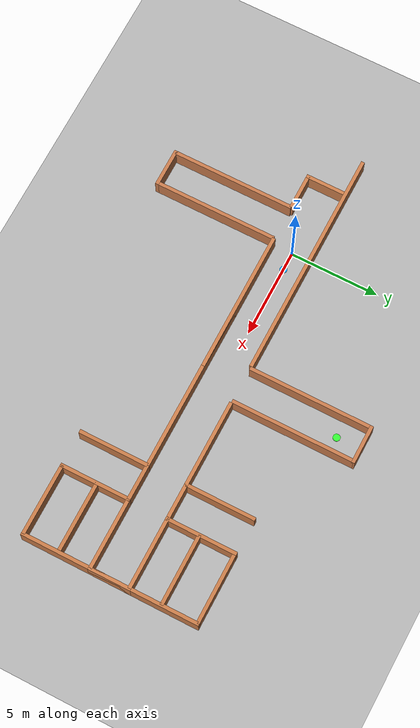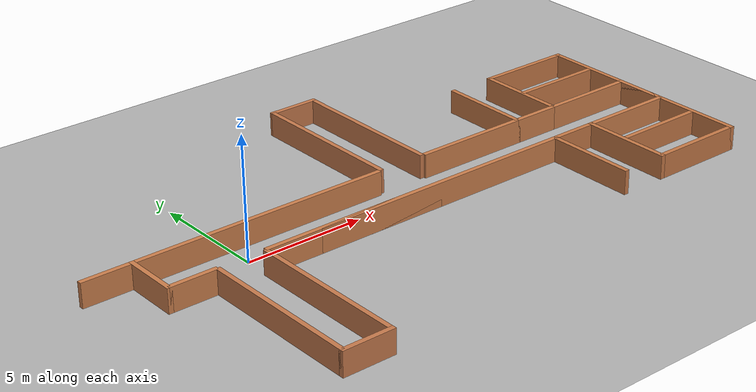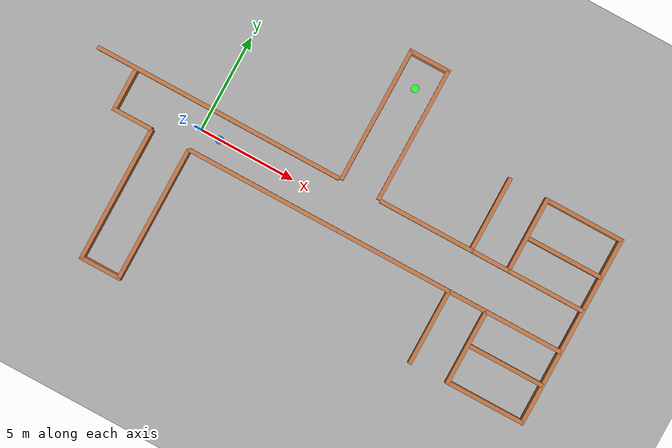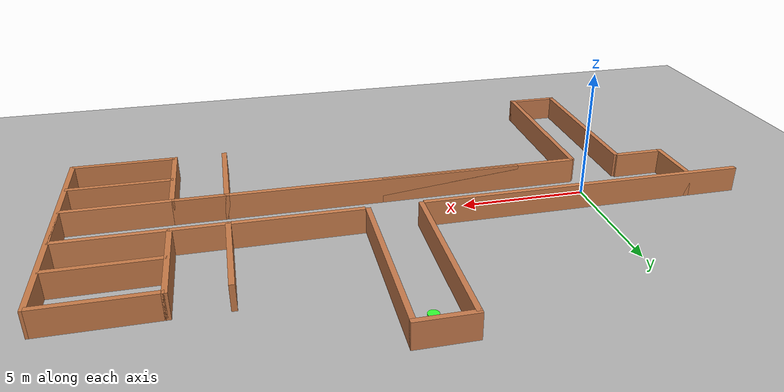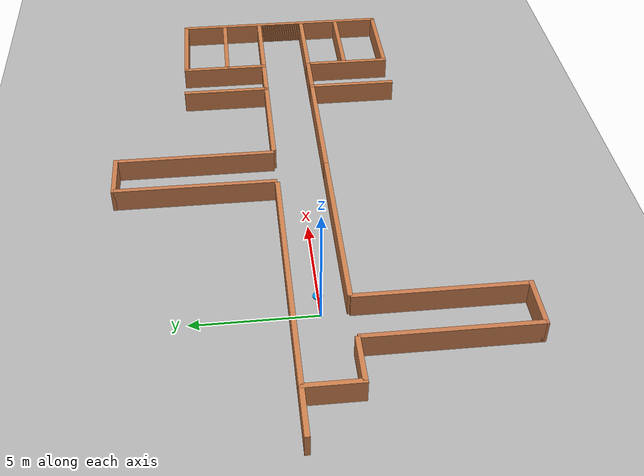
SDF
<?xml version="1.0" ?>
<sdf version="1.6">
  <world name="t_dual_corridor">
    <physics type="ode">
      <max_step_size>0.0005</max_step_size>
      <real_time_factor>1</real_time_factor>
      <real_time_update_rate>2000</real_time_update_rate>
      <ode>
        <solver>
          <type>quick</type>
          <iters>100</iters>
          <sor>1.3</sor>
        </solver>
        <constraints>
          <cfm>1e-5</cfm>
          <erp>0.2</erp>
          <contact_max_correcting_vel>100</contact_max_correcting_vel>
          <contact_surface_layer>0.001</contact_surface_layer>
        </constraints>
      </ode>
    </physics>

    <light name="sun" type="directional">
      <cast_shadows>true</cast_shadows>
      <pose>0 0 10 0 0 0</pose>
      <diffuse>0.8 0.8 0.8 1</diffuse>
      <specular>0.2 0.2 0.2 1</specular>
      <direction>-0.5 0.1 -0.9</direction>
    </light>

    <model name="ground_plane">
      <static>true</static>
      <link name="link">
        <collision name="collision">
          <geometry>
            <plane>
              <normal>0 0 1</normal>
              <size>160 160</size>
            </plane>
          </geometry>
          <surface>
            <friction>
              <ode>
                <mu>1.0</mu>
                <mu2>1.0</mu2>
              </ode>
            </friction>
          </surface>
        </collision>
        <visual name="visual">
          <cast_shadows>false</cast_shadows>
          <geometry>
            <plane>
              <normal>0 0 1</normal>
              <size>160 160</size>
            </plane>
          </geometry>
          <material>
            <ambient>0.30 0.30 0.30 1</ambient>
            <diffuse>0.70 0.70 0.70 1</diffuse>
          </material>
        </visual>
      </link>
    </model>

    <!-- Main horizontal corridor (centerline y=0, clear width=2m) -->
    <model name="wall_main_bottom_far_left">
      <static>true</static>
      <pose>-3.0 -1.1 0.5 0 0 0</pose>
      <link name="link">
        <collision name="collision"><geometry><box><size>2.0 0.2 1.0</size></box></geometry></collision>
        <visual name="visual"><geometry><box><size>2.0 0.2 1.0</size></box></geometry><material><ambient>0.60 0.40 0.20 1</ambient><diffuse>0.80 0.50 0.30 1</diffuse></material></visual>
      </link>
    </model>

    <model name="wall_main_bottom_left">
      <static>true</static>
      <pose>4.0 -1.1 0.5 0 0 0</pose>
      <link name="link">
        <collision name="collision"><geometry><box><size>8.0 0.2 1.0</size></box></geometry></collision>
        <visual name="visual"><geometry><box><size>8.0 0.2 1.0</size></box></geometry><material><ambient>0.60 0.40 0.20 1</ambient><diffuse>0.80 0.50 0.30 1</diffuse></material></visual>
      </link>
    </model>

    <model name="wall_main_bottom_mid_right">
      <static>true</static>
      <pose>8.2 -1.1 0.5 0 0 0</pose>
      <link name="link">
        <collision name="collision"><geometry><box><size>11.6 0.2 1.0</size></box></geometry></collision>
        <visual name="visual"><geometry><box><size>11.6 0.2 1.0</size></box></geometry><material><ambient>0.60 0.40 0.20 1</ambient><diffuse>0.80 0.50 0.30 1</diffuse></material></visual>
      </link>
    </model>

    <model name="wall_main_bottom_far_right">
      <static>true</static>
      <pose>18.0 -1.1 0.5 0 0 0</pose>
      <link name="link">
        <collision name="collision"><geometry><box><size>4.0 0.2 1.0</size></box></geometry></collision>
        <visual name="visual"><geometry><box><size>4.0 0.2 1.0</size></box></geometry><material><ambient>0.60 0.40 0.20 1</ambient><diffuse>0.80 0.50 0.30 1</diffuse></material></visual>
      </link>
    </model>

    <model name="wall_main_top_left">
      <static>true</static>
      <pose>0.4 1.1 0.5 0 0 0</pose>
      <link name="link">
        <collision name="collision"><geometry><box><size>13.0 0.2 1.0</size></box></geometry></collision>
        <visual name="visual"><geometry><box><size>13.0 0.2 1.0</size></box></geometry><material><ambient>0.60 0.40 0.20 1</ambient><diffuse>0.80 0.50 0.30 1</diffuse></material></visual>
      </link>
    </model>

    <model name="wall_main_top_mid_right">
      <static>true</static>
      <pose>11.6 1.1 0.5 0 0 0</pose>
      <link name="link">
        <collision name="collision"><geometry><box><size>5.0 0.2 1.0</size></box></geometry></collision>
        <visual name="visual"><geometry><box><size>5.0 0.2 1.0</size></box></geometry><material><ambient>0.60 0.40 0.20 1</ambient><diffuse>0.80 0.50 0.30 1</diffuse></material></visual>
      </link>
    </model>

    <model name="wall_main_top_far_right">
      <static>true</static>
      <pose>18.0 1.1 0.5 0 0 0</pose>
      <link name="link">
        <collision name="collision"><geometry><box><size>4.0 0.2 1.0</size></box></geometry></collision>
        <visual name="visual"><geometry><box><size>4.0 0.2 1.0</size></box></geometry><material><ambient>0.60 0.40 0.20 1</ambient><diffuse>0.80 0.50 0.30 1</diffuse></material></visual>
      </link>
    </model>

    <!-- Join top-right main segments into one continuous wall line -->
    <model name="wall_main_top_join_mid_far_right">
      <static>true</static>
      <pose>15.0 1.1 0.5 0 0 0</pose>
      <link name="link">
        <collision name="collision"><geometry><box><size>2.0 0.2 1.0</size></box></geometry></collision>
        <visual name="visual"><geometry><box><size>2.0 0.2 1.0</size></box></geometry><material><ambient>0.60 0.40 0.20 1</ambient><diffuse>0.80 0.50 0.30 1</diffuse></material></visual>
      </link>
    </model>

    <model name="wall_main_left_cap">
      <static>true</static>
      <pose>-4.0 0.0 0.5 0 0 0</pose>
      <link name="link">
        <collision name="collision"><geometry><box><size>0.2 2.4 1.0</size></box></geometry></collision>
        <visual name="visual"><geometry><box><size>0.2 2.4 1.0</size></box></geometry><material><ambient>0.60 0.40 0.20 1</ambient><diffuse>0.80 0.50 0.30 1</diffuse></material></visual>
      </link>
    </model>

    <model name="wall_main_right_cap">
      <static>true</static>
      <pose>20.0 0.0 0.5 0 0 0</pose>
      <link name="link">
        <collision name="collision"><geometry><box><size>0.2 2.4 1.0</size></box></geometry></collision>
        <visual name="visual"><geometry><box><size>0.2 2.4 1.0</size></box></geometry><material><ambient>0.60 0.40 0.20 1</ambient><diffuse>0.80 0.50 0.30 1</diffuse></material></visual>
      </link>
    </model>

    <!-- T branch (opening in main top around x=8) -->
    <model name="wall_t_left">
      <static>true</static>
      <pose>7.0 4.55 0.5 0 0 0</pose>
      <link name="link">
        <collision name="collision"><geometry><box><size>0.2 6.9 1.0</size></box></geometry></collision>
        <visual name="visual"><geometry><box><size>0.2 6.9 1.0</size></box></geometry><material><ambient>0.58 0.38 0.20 1</ambient><diffuse>0.78 0.48 0.30 1</diffuse></material></visual>
      </link>
    </model>

    <model name="wall_t_right">
      <static>true</static>
      <pose>9.0 4.55 0.5 0 0 0</pose>
      <link name="link">
        <collision name="collision"><geometry><box><size>0.2 6.9 1.0</size></box></geometry></collision>
        <visual name="visual"><geometry><box><size>0.2 6.9 1.0</size></box></geometry><material><ambient>0.58 0.38 0.20 1</ambient><diffuse>0.78 0.48 0.30 1</diffuse></material></visual>
      </link>
    </model>

    <model name="wall_t_top_cap">
      <static>true</static>
      <pose>8.0 8.0 0.5 0 0 0</pose>
      <link name="link">
        <collision name="collision"><geometry><box><size>2.2 0.2 1.0</size></box></geometry></collision>
        <visual name="visual"><geometry><box><size>2.2 0.2 1.0</size></box></geometry><material><ambient>0.58 0.38 0.20 1</ambient><diffuse>0.78 0.48 0.30 1</diffuse></material></visual>
      </link>
    </model>

    <!-- L branch (connected from main bottom via opening near x=-1) -->
    <model name="wall_l_left">
      <static>true</static>
      <pose>-2.0 -4.55 0.5 0 0 0</pose>
      <link name="link">
        <collision name="collision"><geometry><box><size>0.2 6.9 1.0</size></box></geometry></collision>
        <visual name="visual"><geometry><box><size>0.2 6.9 1.0</size></box></geometry><material><ambient>0.58 0.38 0.20 1</ambient><diffuse>0.78 0.48 0.30 1</diffuse></material></visual>
      </link>
    </model>

    <model name="wall_l_right">
      <static>true</static>
      <pose>0.0 -4.55 0.5 0 0 0</pose>
      <link name="link">
        <collision name="collision"><geometry><box><size>0.2 6.9 1.0</size></box></geometry></collision>
        <visual name="visual"><geometry><box><size>0.2 6.9 1.0</size></box></geometry><material><ambient>0.58 0.38 0.20 1</ambient><diffuse>0.78 0.48 0.30 1</diffuse></material></visual>
      </link>
    </model>

    <model name="wall_l_bottom_cap">
      <static>true</static>
      <pose>-1.0 -8.0 0.5 0 0 0</pose>
      <link name="link">
        <collision name="collision"><geometry><box><size>2.2 0.2 1.0</size></box></geometry></collision>
        <visual name="visual"><geometry><box><size>2.2 0.2 1.0</size></box></geometry><material><ambient>0.58 0.38 0.20 1</ambient><diffuse>0.78 0.48 0.30 1</diffuse></material></visual>
      </link>
    </model>

    <!-- E branch (connected from main via opening around x=14, plus shared spine) -->
    <model name="wall_e_spine_left_top">
      <static>true</static>
      <pose>14.0 3.05 0.5 0 0 0</pose>
      <link name="link">
        <collision name="collision"><geometry><box><size>0.2 3.9 1.0</size></box></geometry></collision>
        <visual name="visual"><geometry><box><size>0.2 3.9 1.0</size></box></geometry><material><ambient>0.55 0.35 0.18 1</ambient><diffuse>0.78 0.48 0.28 1</diffuse></material></visual>
      </link>
    </model>

    <model name="wall_e_spine_left_bottom">
      <static>true</static>
      <pose>14.0 -3.05 0.5 0 0 0</pose>
      <link name="link">
        <collision name="collision"><geometry><box><size>0.2 3.9 1.0</size></box></geometry></collision>
        <visual name="visual"><geometry><box><size>0.2 3.9 1.0</size></box></geometry><material><ambient>0.55 0.35 0.18 1</ambient><diffuse>0.78 0.48 0.28 1</diffuse></material></visual>
      </link>
    </model>

    <model name="wall_e_spine_right_top">
      <static>true</static>
      <pose>16.0 3.05 0.5 0 0 0</pose>
      <link name="link">
        <collision name="collision"><geometry><box><size>0.2 3.9 1.0</size></box></geometry></collision>
        <visual name="visual"><geometry><box><size>0.2 3.9 1.0</size></box></geometry><material><ambient>0.55 0.35 0.18 1</ambient><diffuse>0.78 0.48 0.28 1</diffuse></material></visual>
      </link>
    </model>

    <model name="wall_e_spine_right_bottom">
      <static>true</static>
      <pose>16.0 -3.05 0.5 0 0 0</pose>
      <link name="link">
        <collision name="collision"><geometry><box><size>0.2 3.9 1.0</size></box></geometry></collision>
        <visual name="visual"><geometry><box><size>0.2 3.9 1.0</size></box></geometry><material><ambient>0.55 0.35 0.18 1</ambient><diffuse>0.78 0.48 0.28 1</diffuse></material></visual>
      </link>
    </model>

    <!-- Seam connectors: explicitly join main corridor walls to E-spine walls -->
    <model name="wall_main_e_join_l_top">
      <static>true</static>
      <pose>14.0 1.1 0.5 0 0 0</pose>
      <link name="link">
        <collision name="collision"><geometry><box><size>0.2 0.2 1.0</size></box></geometry></collision>
        <visual name="visual"><geometry><box><size>0.2 0.2 1.0</size></box></geometry><material><ambient>0.55 0.35 0.18 1</ambient><diffuse>0.78 0.48 0.28 1</diffuse></material></visual>
      </link>
    </model>

    <model name="wall_main_e_join_l_bottom">
      <static>true</static>
      <pose>14.0 -1.1 0.5 0 0 0</pose>
      <link name="link">
        <collision name="collision"><geometry><box><size>0.2 0.2 1.0</size></box></geometry></collision>
        <visual name="visual"><geometry><box><size>0.2 0.2 1.0</size></box></geometry><material><ambient>0.55 0.35 0.18 1</ambient><diffuse>0.78 0.48 0.28 1</diffuse></material></visual>
      </link>
    </model>

    <model name="wall_main_e_join_r_top">
      <static>true</static>
      <pose>16.0 1.1 0.5 0 0 0</pose>
      <link name="link">
        <collision name="collision"><geometry><box><size>0.2 0.2 1.0</size></box></geometry></collision>
        <visual name="visual"><geometry><box><size>0.2 0.2 1.0</size></box></geometry><material><ambient>0.55 0.35 0.18 1</ambient><diffuse>0.78 0.48 0.28 1</diffuse></material></visual>
      </link>
    </model>

    <model name="wall_main_e_join_r_bottom">
      <static>true</static>
      <pose>16.0 -1.1 0.5 0 0 0</pose>
      <link name="link">
        <collision name="collision"><geometry><box><size>0.2 0.2 1.0</size></box></geometry></collision>
        <visual name="visual"><geometry><box><size>0.2 0.2 1.0</size></box></geometry><material><ambient>0.55 0.35 0.18 1</ambient><diffuse>0.78 0.48 0.28 1</diffuse></material></visual>
      </link>
    </model>

    <model name="wall_e_top_arm_top">
      <static>true</static>
      <pose>18.0 4.9 0.5 0 0 0</pose>
      <link name="link">
        <collision name="collision"><geometry><box><size>4.0 0.2 1.0</size></box></geometry></collision>
        <visual name="visual"><geometry><box><size>4.0 0.2 1.0</size></box></geometry><material><ambient>0.55 0.35 0.18 1</ambient><diffuse>0.78 0.48 0.28 1</diffuse></material></visual>
      </link>
    </model>

    <model name="wall_e_top_arm_bottom">
      <static>true</static>
      <pose>18.0 2.9 0.5 0 0 0</pose>
      <link name="link">
        <collision name="collision"><geometry><box><size>4.0 0.2 1.0</size></box></geometry></collision>
        <visual name="visual"><geometry><box><size>4.0 0.2 1.0</size></box></geometry><material><ambient>0.55 0.35 0.18 1</ambient><diffuse>0.78 0.48 0.28 1</diffuse></material></visual>
      </link>
    </model>

    <model name="wall_e_mid_arm_top">
      <static>true</static>
      <pose>18.0 1.1 0.5 0 0 0</pose>
      <link name="link">
        <collision name="collision"><geometry><box><size>4.0 0.2 1.0</size></box></geometry></collision>
        <visual name="visual"><geometry><box><size>4.0 0.2 1.0</size></box></geometry><material><ambient>0.55 0.35 0.18 1</ambient><diffuse>0.78 0.48 0.28 1</diffuse></material></visual>
      </link>
    </model>

    <model name="wall_e_mid_arm_bottom">
      <static>true</static>
      <pose>18.0 -1.1 0.5 0 0 0</pose>
      <link name="link">
        <collision name="collision"><geometry><box><size>4.0 0.2 1.0</size></box></geometry></collision>
        <visual name="visual"><geometry><box><size>4.0 0.2 1.0</size></box></geometry><material><ambient>0.55 0.35 0.18 1</ambient><diffuse>0.78 0.48 0.28 1</diffuse></material></visual>
      </link>
    </model>

    <!-- Join E mid-bottom arm to main bottom mid-right wall -->
    <model name="wall_join_main_bottom_mid_to_e_mid_bottom">
      <static>true</static>
      <pose>15.0 -1.1 0.5 0 0 0</pose>
      <link name="link">
        <collision name="collision"><geometry><box><size>2.0 0.2 1.0</size></box></geometry></collision>
        <visual name="visual"><geometry><box><size>2.0 0.2 1.0</size></box></geometry><material><ambient>0.55 0.35 0.18 1</ambient><diffuse>0.78 0.48 0.28 1</diffuse></material></visual>
      </link>
    </model>

    <model name="wall_e_bottom_arm_top">
      <static>true</static>
      <pose>18.0 -2.9 0.5 0 0 0</pose>
      <link name="link">
        <collision name="collision"><geometry><box><size>4.0 0.2 1.0</size></box></geometry></collision>
        <visual name="visual"><geometry><box><size>4.0 0.2 1.0</size></box></geometry><material><ambient>0.55 0.35 0.18 1</ambient><diffuse>0.78 0.48 0.28 1</diffuse></material></visual>
      </link>
    </model>

    <model name="wall_e_bottom_arm_bottom">
      <static>true</static>
      <pose>18.0 -4.9 0.5 0 0 0</pose>
      <link name="link">
        <collision name="collision"><geometry><box><size>4.0 0.2 1.0</size></box></geometry></collision>
        <visual name="visual"><geometry><box><size>4.0 0.2 1.0</size></box></geometry><material><ambient>0.55 0.35 0.18 1</ambient><diffuse>0.78 0.48 0.28 1</diffuse></material></visual>
      </link>
    </model>

    <model name="wall_e_end_cap">
      <static>true</static>
      <pose>20.0 0.0 0.5 0 0 0</pose>
      <link name="link">
        <collision name="collision"><geometry><box><size>0.2 10.0 1.0</size></box></geometry></collision>
        <visual name="visual"><geometry><box><size>0.2 10.0 1.0</size></box></geometry><material><ambient>0.55 0.35 0.18 1</ambient><diffuse>0.78 0.48 0.28 1</diffuse></material></visual>
      </link>
    </model>

    <!-- Spawn markers -->
    <model name="spawn_marker_a">
      <static>true</static>
      <pose>1.0 0.0 0.05 0 0 0</pose>
      <link name="link">
        <visual name="visual">
          <geometry><cylinder><radius>0.20</radius><length>0.04</length></cylinder></geometry>
          <material><ambient>0 0.6 1 1</ambient><diffuse>0 0.6 1 1</diffuse></material>
        </visual>
      </link>
    </model>

    <model name="spawn_marker_b">
      <static>true</static>
      <pose>8.0 6.6 0.05 0 0 0</pose>
      <link name="link">
        <visual name="visual">
          <geometry><cylinder><radius>0.20</radius><length>0.04</length></cylinder></geometry>
          <material><ambient>0.2 1 0.2 1</ambient><diffuse>0.2 1 0.2 1</diffuse></material>
        </visual>
      </link>
    </model>
  </world>
</sdf>
